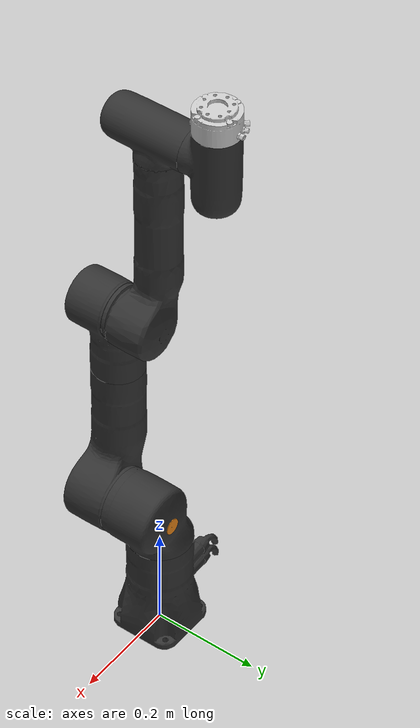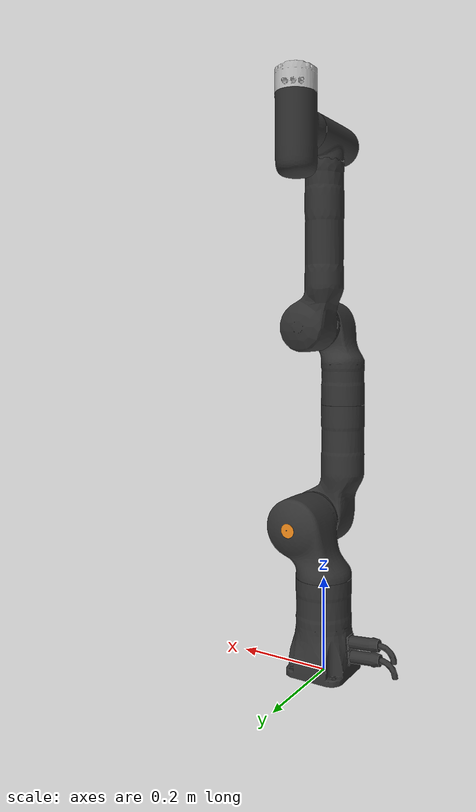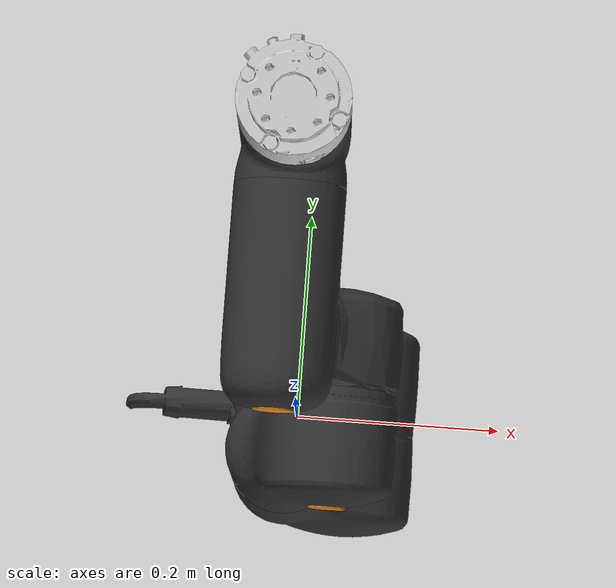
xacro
<?xml version="1.0"?>
<robot name="kr810" xmlns:xacro="http://www.ros.org/wiki/xacro">

  <xacro:include filename="$(find kassow_kord_description)/kr810/urdf/kr810_description_nominal.urdf.xacro"/>

  <link name="world"/>

  <xacro:kr810_description prefix="kr" parent="world">
    <origin xyz="0 0 0" rpy="0 0 0"/>
  </xacro:kr810_description>

</robot>

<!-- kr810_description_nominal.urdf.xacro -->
<robot name="kr2_robot_a810" model="a810" model-revision="051020-0" mechanical-revision="5" features="TIO" xmlns:xacro="http://www.ros.org/wiki/xacro">

  <xacro:macro name="kr810_description" params="prefix parent *origin">

  <!-- globals -->
  <xacro:property name="joints_damping" value="0.1" />

  <!-- all dimensions should be input as measured in the drawing in mm and
       converted to real dimensions by multiplying with the scale property -->
  <xacro:property name="scale" value="0.001" />

  <xacro:property name="pi_per_deg" value="${pi / 180.0}" />

  <xacro:property name="mass_multiplier" value="1.0" />

  <xacro:macro name="cylinder_inertia" params="mass radius length">
      <inertia ixx="0.003"
               ixy="0.0"
               ixz="0.0"
               iyy="0.003"
               iyz="0.0"
               izz="0.003"/>
  </xacro:macro>

  <xacro:macro name="visual_and_collision" params="xyz material rpy *geometry">
      <visual>
        <origin rpy="${rpy}" xyz="${xyz}" />
        <geometry>
          <xacro:insert_block name="geometry" />
        </geometry>
        <material name="${material}" />
      </visual>
      <collision>
        <origin rpy="${rpy}" xyz="${xyz}" />
        <geometry>
          <xacro:insert_block name="geometry" />
        </geometry>
      </collision>
  </xacro:macro>

  <xacro:macro name="visual_and_collision_mesh" params="xyz rpy color visual_mesh_file collision_mesh_file scale">
    <visual>
      <origin rpy="${rpy}" xyz="${xyz}" />
      <geometry>
        <mesh filename="${visual_mesh_file}" scale="${scale}"/>
      </geometry>
      <material name="">
        <color rgba="${color}" />
      </material>
    </visual>
    <collision>
      <origin rpy="${rpy}" xyz="${xyz}" />
      <geometry>
        <mesh filename="${collision_mesh_file}" scale="${scale}"/>
      </geometry>
    </collision>
  </xacro:macro>

  <link name="${prefix}_base">
    <xacro:property name="base_outer_radius" value="${ 80 * scale}" />
    <xacro:property name="base_inner_radius" value="${ 60 * scale}" />
    <xacro:property name="base_outer_height" value="${ 20 * scale}" />
    <xacro:property name="base_inner_height" value="${ 15 * scale}" />

    <xacro:property name="base_mass"         value="0.6" />
    <inertial>
      <origin rpy="0 0 0" xyz="0 0 0"/>
      <mass value="${base_mass*mass_multiplier}"/>
      <xacro:cylinder_inertia mass="${base_mass}"
                              radius="${base_outer_radius}"
                              length="${base_inner_height+base_outer_height}" />
    </inertial>

    <xacro:visual_and_collision_mesh
      xyz="0 0 0"
      rpy="0 0 0"
      color="0.2 0.2 0.2 1"
      visual_mesh_file="package://kassow_kord_description/kr810/meshes/a810/a810_Base.stl"
      collision_mesh_file="package://kassow_kord_description/kr810/meshes/a810/a810_Base_collision.stl"
      scale="0.001 0.001 0.001"/>
  </link>

  <link name="${prefix}_link1">
    <xacro:property name="link1_radius" value="${ 60 * scale}" />
    <xacro:property name="link1_length" value="${ 308.7 * scale - 35 * scale}" />
    <xacro:property name="link1_hinge_length"  value="${  130   * scale}"   />
    <xacro:property name="link1_hinge_radius"  value="${  57.5 * scale}" />

    <xacro:property name="link1_mass"   value="4.58" />

    <inertial>
      <origin rpy="0 0 0" xyz="0 0 ${link1_length/2}"/>
      <mass value="${link1_mass*mass_multiplier}"/>
      <xacro:cylinder_inertia mass="${link1_mass}"
                              radius="${link1_radius}"
                              length="${link1_length}"/>
    </inertial>

    <xacro:visual_and_collision_mesh
      xyz="0 0 0.169"
      rpy="0 0 0"
      color="0.2 0.2 0.2 1"
      visual_mesh_file="package://kassow_kord_description/kr810/meshes/a810/a810_Link2.stl"
      collision_mesh_file="package://kassow_kord_description/kr810/meshes/a810/a810_Link2_collision.stl"
      scale="0.001 0.001 0.001"/>
  </link>

  <link name="${prefix}_linkJ2">
    <xacro:property name="cylinderJ2_radius"   value="${15 * scale}"   />
    <xacro:property name="cylinderJ2_height"   value="${120 * scale}"   />
    <xacro:property name="linkJ2_mass"         value="6.1"   />

    <xacro:visual_and_collision rpy="${pi/2} 0 0"
                                xyz="0 ${-10 * scale} 0"
                                material="orange">
      <cylinder length="${cylinderJ2_height * 1.25}" radius="${cylinderJ2_radius}"/>
    </xacro:visual_and_collision>

    <inertial>
      <origin rpy="0 0 0" xyz="0 0 0"/>
      <mass value="${linkJ2_mass*mass_multiplier}"/>
      <xacro:cylinder_inertia mass="${linkJ2_mass}"
                              radius="${cylinderJ2_radius}"
                              length="${cylinderJ2_height}" />
    </inertial>
  </link>

  <link name="${prefix}_link2">
    <xacro:property name="link2_radius"   value="${ 45.0 * scale}"   />
    <xacro:property name="link2_length"   value="${ 274.0 * scale}"   />

    <xacro:property name="link2_mass"     value="0.43"   />

    <inertial>
      <origin rpy="0 0 0" xyz="0 0 ${ 175.0 * scale }"/>
      <mass value="${link2_mass*mass_multiplier}"/>
      <xacro:cylinder_inertia mass="${link2_mass}"
                              radius="${link2_radius}"
                              length="${link2_length}" />
    </inertial>

    <xacro:visual_and_collision_mesh
      xyz="0.049 0 0"
      rpy="-${pi/2} 0 -${pi/2}"
      color="0.2 0.2 0.2 1"
      visual_mesh_file="package://kassow_kord_description/kr810/meshes/a810/a810_Link3.stl"
      collision_mesh_file="package://kassow_kord_description/kr810/meshes/a810/a810_Link3_collision.stl"
      scale="0.001 0.001 0.001"/>
  </link>

  <link name="${prefix}_link3">
    <xacro:property name="link3_radius"        value="${  45.0 * scale}" />
    <xacro:property name="link3_length"        value="${ 142.9 * scale}" />
    <xacro:property name="link3_hinge_length"  value="${ 120.0 * scale}" />
    <xacro:property name="link3_hinge_radius"  value="${  45.0 * scale}" />
    <xacro:property name="link3_hinge_yoffset" value="${   6.5 * scale}" />

    <xacro:property name="link3_mass"     value="2.9" />

    <inertial>
      <origin rpy="0 0 0" xyz="0 0 0"/>
      <mass value="${link3_mass*mass_multiplier}"/>
      <xacro:cylinder_inertia mass="${link3_mass}"
                              radius="${link3_radius}"
                              length="${link3_length}" />
    </inertial>

    <xacro:visual_and_collision_mesh
      xyz="-0.05 -0.0 0.315"
      rpy="${pi/2} 0 -${pi/2}"
      color="0.2 0.2 0.2 1"
      visual_mesh_file="package://kassow_kord_description/kr810/meshes/a810/a810_Link4.stl"
      collision_mesh_file="package://kassow_kord_description/kr810/meshes/a810/a810_Link4_collision.stl"
      scale="0.001 0.001 0.001"/>
  </link>

  <link name="${prefix}_linkJ4">
    <xacro:property name="cylinderJ4_radius"   value="${15.0 * scale}"   />
    <xacro:property name="cylinderJ4_height"   value="${100 * scale}"   />
    <xacro:property name="linkJ4_mass"         value="3.8"   />

    <xacro:visual_and_collision rpy="${pi/2} 0 0"
                                xyz="0 ${13 * scale} 0"
                                material="orange">
      <cylinder length="${cylinderJ4_height * 1.29}" radius="${cylinderJ4_radius}"/>
    </xacro:visual_and_collision>

    <inertial>
      <origin rpy="0 0 0" xyz="0 ${6.5 * scale} 0"/>
      <mass value="${linkJ4_mass*mass_multiplier}"/>
      <xacro:cylinder_inertia mass="${linkJ4_mass}"
                              radius="${cylinderJ4_radius}"
                              length="${cylinderJ4_height}" />
    </inertial>
  </link>

  <link name="${prefix}_link4">
    <xacro:property name="link4_radius"   value="${  40.0 * scale}" />
    <xacro:property name="link4_length"   value="${ 271.0 * scale}" />

    <xacro:property name="link4_mass"     value="0.33" />

    <inertial>
      <origin rpy="0 0 0" xyz="0 0 ${ 168.0 * scale}"/>
      <mass value="${link4_mass*mass_multiplier}"/>
      <xacro:cylinder_inertia mass="${link4_mass}"
                              radius="${link4_radius}"
                              length="${link4_length}" />
    </inertial>

    <xacro:visual_and_collision_mesh
      xyz="0.04 0.0005 0.0"
      rpy="-${pi/2} 0 ${pi/2}"
      color="0.2 0.2 0.2 1"
      visual_mesh_file="package://kassow_kord_description/kr810/meshes/a810/a810_Link5.stl"
      collision_mesh_file="package://kassow_kord_description/kr810/meshes/a810/a810_Link5_collision.stl"
      scale="0.001 0.001 0.001"/>
  </link>

  <link name="${prefix}_link5">
    <xacro:property name="link5_radius"   value="${  40.0 * scale}" />
    <xacro:property name="link5_length"   value="${ 103.5 * scale}" />

    <xacro:property name="link5_mass"     value="1.7" />

    <inertial>
      <origin rpy="0 0 0" xyz="0 0 0"/>
      <mass value="${link5_mass*mass_multiplier}"/>
      <xacro:cylinder_inertia mass="${link5_mass}"
                              radius="${link5_radius}"
                              length="${link5_length}" />
    </inertial>

    <xacro:visual_and_collision_mesh
      xyz="0.0 0.002 0.1035"
      rpy="0 0 -${pi/2}"
      color="0.2 0.2 0.2 1"
      visual_mesh_file="package://kassow_kord_description/kr810/meshes/a810/a810_Link6.stl"
      collision_mesh_file="package://kassow_kord_description/kr810/meshes/a810/a810_Link6_collision.stl"
      scale="0.001 0.001 0.001"/>
  </link>

  <link name="${prefix}_linkJ6">
    <xacro:property name="cylinderJ6_radius"   value="${ 15.0 * scale}"   />
    <xacro:property name="cylinderJ6_height"   value="${ 110.0 * scale}"  />
    <xacro:property name="linkJ6_mass"         value="1.8"   />

    <xacro:visual_and_collision rpy="${pi/2} 0 0"
                                xyz="0 ${10 * scale} 0"
                                material="orange">
      <cylinder length="${cylinderJ6_height * 1.9}" radius="${cylinderJ6_radius}"/>
    </xacro:visual_and_collision>

    <inertial>
      <origin rpy="0 0 0" xyz="0 ${4.0 * scale} 0"/>
      <mass value="${linkJ6_mass*mass_multiplier}"/>
      <xacro:cylinder_inertia mass="${linkJ6_mass}"
                              radius="${cylinderJ6_radius}"
                              length="${cylinderJ6_height}" />
    </inertial>
  </link>

  <link name="${prefix}_link6">
    <xacro:property name="link6_radius"   value="${ 35.0 * scale}" />
    <xacro:property name="link6_length"   value="${ 66.5 * scale}" />
    <xacro:property name="link6_mass"     value="1.8" />
    <inertial>
      <origin rpy="0 0 0" xyz="0 0 ${4.0 * scale}"/>
      <mass value="${link6_mass*mass_multiplier}"/>
      <xacro:cylinder_inertia mass="${link6_mass}"
                              radius="${link6_radius}"
                              length="${link6_length}" />
    </inertial>

    <xacro:visual_and_collision_mesh
      xyz="0.0 0.0 0.0"
      rpy="0 0 0"
      color="0.2 0.2 0.2 1"
      visual_mesh_file="package://kassow_kord_description/kr810/meshes/a810/a810_Link7.stl"
      collision_mesh_file="package://kassow_kord_description/kr810/meshes/a810/a810_Link7_collision.stl"
      scale="0.001 0.001 0.001"/>
  </link>

  <link name="${prefix}_end_effector">
    <xacro:property name="end_effector_outer_radius" value="${ 35.5 * scale}" />
    <xacro:property name="end_effector_outer_length" value="${ 5.0 * scale}" />
    <xacro:property name="end_effector_inner_radius" value="${ 22.5 * scale}" />
    <xacro:property name="end_effector_inner_length" value="${ 5.0   * scale}" />

    <xacro:property name="end_effector_mass" value="0.56"/>

    <inertial>
      <origin rpy="0 0 0" xyz="0 0 ${-19.7 * scale}"/>
      <mass value="${end_effector_mass*mass_multiplier}"/>
      <xacro:cylinder_inertia mass="${end_effector_mass}"
                              radius="${end_effector_outer_radius}"
                              length="${end_effector_outer_length + end_effector_inner_length}" />
    </inertial>

    <xacro:visual_and_collision_mesh
      xyz="0.0 -0.0 0.0"
      rpy="0 0 0"
      color="0.8 0.8 0.8 1"
      visual_mesh_file="package://kassow_kord_description/kr810/meshes/a810/a810_ToolIO.stl"
      collision_mesh_file="package://kassow_kord_description/kr810/meshes/a810/a810_ToolIO_collision.stl"
      scale="0.001 0.001 0.001"/>
  </link>

  <!-- joints -->
  <joint name="${prefix}_parent_link" type="fixed">
    <xacro:insert_block name="origin" />
    <parent link="${parent}"/>
    <child link="${prefix}_base"/>
  </joint>

  <joint name="${prefix}_joint_1" type="revolute">
    <parent link="${prefix}_base"/>
    <child link="${prefix}_link1"/>
    <origin rpy="0 0 0" xyz="0 0 ${base_inner_height + base_outer_height}"/>
    <axis xyz="0 0 1"/>

    <dynamics damping="${joints_damping}"/>
    <limit effort="60" velocity="${radians(225)}" lower="${-2*pi}" upper="${2*pi}"/>
  </joint>

  <xacro:property name="joint1_xoffset"  value="${  50.0 * scale}" />
  <xacro:property name="joint1_yoffset"  value="${   0.0 * scale}" />
  <xacro:property name="joint1_zoffset"  value="${ 308.7 * scale - 35 * scale}" />

  <joint name="${prefix}_joint_2" type="revolute">
    <parent link="${prefix}_link1"/>
    <child link="${prefix}_linkJ2"/>
    <origin rpy="0 0 0" xyz="${joint1_xoffset} ${joint1_yoffset} ${joint1_zoffset}"/>
    <axis xyz="0 1 0"/>

    <dynamics damping="${joints_damping}"/>
    <limit effort="60" velocity="${radians(225)}" lower="-${radians(70.0)}" upper="${pi}"/>
  </joint>

  <xacro:property name="jointPL2_xoffset"  value="${  -50.0 * scale}" />
  <xacro:property name="jointPL2_yoffset"  value="${  -85.7 * scale}" />

  <joint name="${prefix}_jointPL2" type="fixed">
    <parent link="${prefix}_linkJ2"/>
    <child link="${prefix}_link2"/>
    <origin rpy="0 0 0" xyz="${jointPL2_xoffset} ${jointPL2_yoffset} 0"/>
  </joint>

  <joint name="${prefix}_joint_3" type="revolute">
    <parent link="${prefix}_link2"/>
    <child link="${prefix}_link3"/>
    <origin rpy="0 0 0" xyz="0 0 ${link2_length}"/>
    <axis xyz="0 0 1"/>

    <dynamics damping="${joints_damping}"/>
    <limit effort="40" velocity="${radians(225)}" lower="${-2*pi}" upper="${2*pi}"/>
  </joint>

  <xacro:property name="joint3_xoffset"  value="${ 40.0 * scale}" />
  <xacro:property name="joint3_yoffset"  value="${ 0.0 * scale}" />
  <xacro:property name="joint3_zoffset"  value="${ 142.9 * scale}" />

  <joint name="${prefix}_joint_4" type="revolute">
    <parent link="${prefix}_link3"/>
    <child link="${prefix}_linkJ4"/>
    <origin rpy="0 0 0" xyz="${joint3_xoffset} ${joint3_yoffset} ${joint3_zoffset}"/>
    <axis xyz="0 1 0"/>

    <dynamics damping="${joints_damping}"/>
    <limit effort="40" velocity="${radians(225)}" lower="-${radians(70.0)}" upper="${pi}"/>
  </joint>

  <xacro:property name="jointPL4_xoffset"  value="${ -40.0 * scale}" />
  <xacro:property name="jointPL4_yoffset"  value="${ 84.05 * scale}" />
  <xacro:property name="jointPL4_zoffset"  value="${ 0.0 * scale}" />

  <joint name="${prefix}_jointPL4" type="fixed">
    <parent link="${prefix}_linkJ4"/>
    <child link="${prefix}_link4"/>
    <origin rpy="0 0 0" xyz="${jointPL4_xoffset} ${jointPL4_yoffset} ${jointPL4_zoffset}"/>
  </joint>

  <joint name="${prefix}_joint_5" type="revolute">
    <parent link="${prefix}_link4"/>
    <child link="${prefix}_link5"/>
    <origin rpy="0 0 0" xyz="0 0 ${link4_length}"/>
    <axis xyz="0 0 1"/>

    <dynamics damping="${joints_damping}"/>
    <limit effort="20" velocity="${radians(225)}" lower="${-2*pi}" upper="${2*pi}"/>
  </joint>

  <xacro:property name="joint5_zoffset"  value="${ 103.5 * scale}" />

  <joint name="${prefix}_joint_6" type="revolute">
    <parent link="${prefix}_link5"/>
    <child link="${prefix}_linkJ6"/>
    <origin rpy="0 0 0" xyz="0 0 ${joint5_zoffset}"/>
    <axis xyz="0 1 0"/>

    <dynamics damping="${joints_damping}"/>
    <limit effort="20" velocity="${radians(225)}" lower="${-2*pi}" upper="${2*pi}"/>
  </joint>

  <xacro:property name="jointPL6_yoffset"  value="${ 111.0 * scale}" />
  <joint name="${prefix}_jointPL6" type="fixed">
    <parent link="${prefix}_linkJ6"/>
    <child link="${prefix}_link6"/>
    <origin rpy="0 0 0" xyz="0 ${jointPL6_yoffset} 0"/>
  </joint>

  <xacro:property name="joint6_zoffset"  value="${ 108.0 * scale}" />

  <joint name="${prefix}_joint_7" type="revolute">
    <parent link="${prefix}_link6"/>
    <child link="${prefix}_end_effector"/>
    <origin rpy="0 0 0" xyz="0 0 ${joint6_zoffset}"/>
    <axis xyz="0 0 1"/>

    <dynamics damping="${joints_damping}"/>

    <limit effort="20" velocity="${radians(225)}" lower="${-2*pi}" upper="${2*pi}"/>
  </joint>

  </xacro:macro>

</robot>
